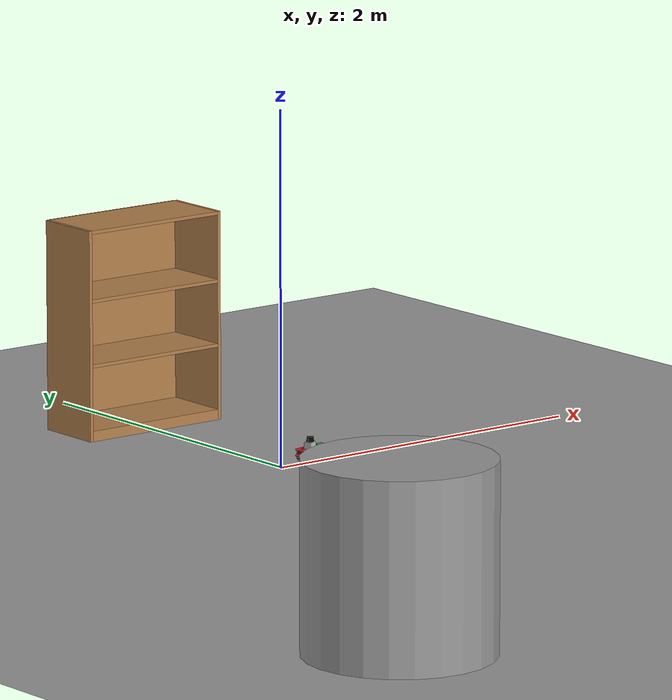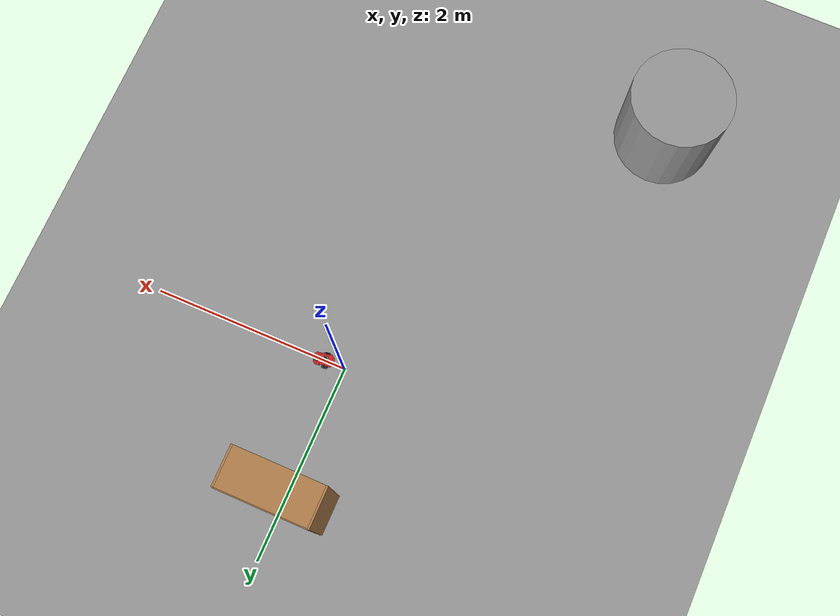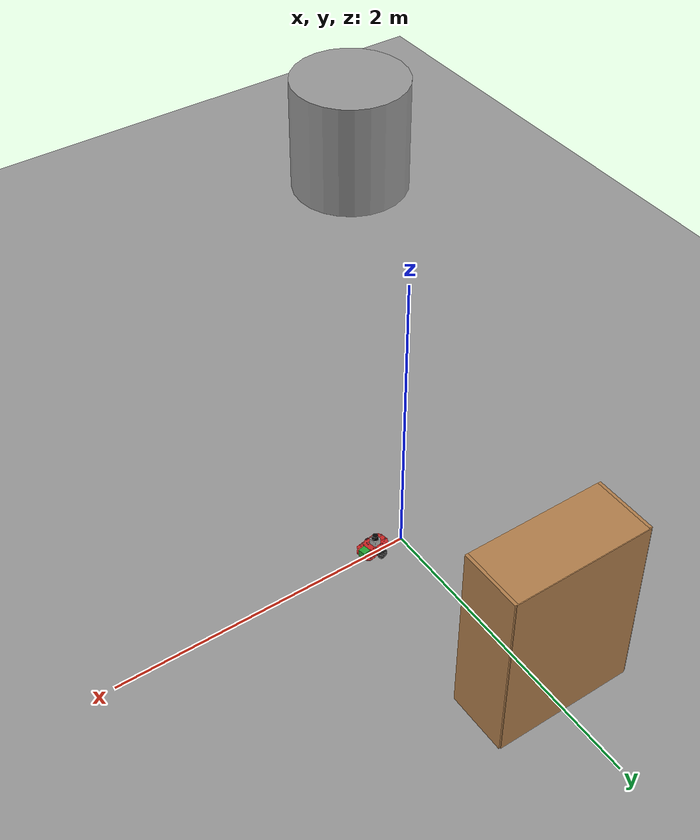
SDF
<sdf version="1.6">
 <world name="default">
  <light name="sun" type="directional">
   <pose>0 0 10 0 -0 0</pose>
   <diffuse>0.8 0.8 0.8 1</diffuse>
   <specular>0.2 0.2 0.2 1</specular>
   <attenuation>
    <range>1000</range>
    <constant>0.9</constant>
    <linear>0.01</linear>
    <quadratic>0.001</quadratic>
   </attenuation>
   <direction>0.5 0.1 -0.9</direction>
  </light>
  <scene><ambient>0.4 0.4 0.4 1</ambient><background>0.7 0.7 0.7 1</background><shadows>1</shadows></scene>
  <physics name="default_physics" default="0" type="ode">
   <max_step_size>0.01</max_step_size>
   <real_time_factor>1</real_time_factor>
   <real_time_update_rate>100</real_time_update_rate>
  </physics>
  <model name="bookshelf">
   <static>1</static>
   <link name="link">
    <inertial><mass>1</mass></inertial>
    <collision name="back">
     <pose>0 0.005 0.6 0 -0 0</pose>
     <geometry><box><size>0.9 0.01 1.2</size></box></geometry>
    </collision>
    <visual name="visual1">
     <pose>0 0.005 0.6 0 -0 0</pose>
     <geometry><box><size>0.9 0.01 1.2</size></box></geometry>
     <material>
      <script><uri>file://media/materials/scripts/gazebo.material</uri><name>Gazebo/Wood</name></script>
     </material>
    </visual>
    <collision name="left_side">
     <pose>0.45 -0.195 0.6 0 -0 0</pose>
     <geometry><box><size>0.02 0.4 1.2</size></box></geometry>
    </collision>
    <visual name="visual2">
     <pose>0.45 -0.195 0.6 0 -0 0</pose>
     <geometry><box><size>0.02 0.4 1.2</size></box></geometry>
     <material>
      <script><uri>file://media/materials/scripts/gazebo.material</uri><name>Gazebo/Wood</name></script>
     </material>
    </visual>
    <collision name="right_side">
     <pose>-0.45 -0.195 0.6 0 -0 0</pose>
     <geometry><box><size>0.02 0.4 1.2</size></box></geometry>
    </collision>
    <visual name="visual3">
     <pose>-0.45 -0.195 0.6 0 -0 0</pose>
     <geometry><box><size>0.02 0.4 1.2</size></box></geometry>
     <material>
      <script><uri>file://media/materials/scripts/gazebo.material</uri><name>Gazebo/Wood</name></script>
     </material>
    </visual>
    <collision name="bottom">
     <pose>0 -0.195 0.03 0 -0 0</pose>
     <geometry><box><size>0.88 0.4 0.06</size></box></geometry>
    </collision>
    <visual name="visual4">
     <pose>0 -0.195 0.03 0 -0 0</pose>
     <geometry><box><size>0.88 0.4 0.06</size></box></geometry>
     <material>
      <script><uri>file://media/materials/scripts/gazebo.material</uri><name>Gazebo/Wood</name></script>
     </material>
    </visual>
    <collision name="top">
     <pose>0 -0.195 1.19 0 -0 0</pose>
     <geometry><box><size>0.88 0.4 0.02</size></box></geometry>
    </collision>
    <visual name="visual5">
     <pose>0 -0.195 1.19 0 -0 0</pose>
     <geometry><box><size>0.88 0.4 0.02</size></box></geometry>
     <material>
      <script><uri>file://media/materials/scripts/gazebo.material</uri><name>Gazebo/Wood</name></script>
     </material>
    </visual>
    <collision name="low_shelf">
     <pose>0 -0.195 0.43 0 -0 0</pose>
     <geometry><box><size>0.88 0.4 0.02</size></box></geometry>
    </collision>
    <visual name="visual6">
     <pose>0 -0.195 0.43 0 -0 0</pose>
     <geometry><box><size>0.88 0.4 0.02</size></box></geometry>
     <material>
      <script><uri>file://media/materials/scripts/gazebo.material</uri><name>Gazebo/Wood</name></script>
     </material>
    </visual>
    <collision name="high_shelf">
     <pose>0 -0.195 0.8 0 -0 0</pose>
     <geometry><box><size>0.88 0.4 0.02</size></box></geometry>
    </collision>
    <visual name="visual7">
     <pose>0 -0.195 0.8 0 -0 0</pose>
     <geometry><box><size>0.88 0.4 0.02</size></box></geometry>
     <material>
      <script><uri>file://media/materials/scripts/gazebo.material</uri><name>Gazebo/Wood</name></script>
     </material>
    </visual>
    <velocity_decay><linear>0</linear><angular>0</angular></velocity_decay>
   </link>
   <pose>0 1.53026 0 0 -0 0</pose>
  </model>
  <model name="ground_plane_0">
   <static>1</static>
   <link name="link">
    <collision name="collision">
     <geometry><plane><normal>0 0 1</normal><size>100 100</size></plane></geometry>
     <surface><friction><ode><mu>100</mu><mu2>50</mu2></ode></friction></surface>
    </collision>
    <visual name="visual">
     <cast_shadows>0</cast_shadows>
     <geometry><plane><normal>0 0 1</normal><size>100 100</size></plane></geometry>
     <material>
      <script><uri>file://media/materials/scripts/gazebo.material</uri><name>Gazebo/Grey</name></script>
     </material>
    </visual>
    <velocity_decay><linear>0</linear><angular>0</angular></velocity_decay>
   </link>
   <pose>0.497681 0 0 0 -0 0</pose>
  </model>
  <model name="unit_cylinder_1">
   <pose>-2 -3.4888 0.49912 0 -0 0</pose>
   <link name="link">
    <inertial>
     <mass>1</mass>
     <inertia><ixx>1</ixx><ixy>0</ixy><ixz>0</ixz><iyy>1</iyy><iyz>0</iyz><izz>1</izz></inertia>
    </inertial>
    <collision name="collision">
     <geometry><cylinder><radius>0.5</radius><length>1</length></cylinder></geometry>
    </collision>
    <visual name="visual">
     <geometry><cylinder><radius>0.5</radius><length>1</length></cylinder></geometry>
     <material>
      <script><uri>file://media/materials/scripts/gazebo.material</uri><name>Gazebo/Grey</name></script>
     </material>
    </visual>
    <velocity_decay><linear>0</linear><angular>0</angular></velocity_decay>
   </link>
   <static>0</static>
  </model>
  <gravity>0 0 -9.8</gravity>
  <magnetic_field>6e-06 2.3e-05 -4.2e-05</magnetic_field>
  <atmosphere type="adiabatic"/>
  <spherical_coordinates>
   <surface_model>EARTH_WGS84</surface_model>
   <latitude_deg>0</latitude_deg>
   <longitude_deg>0</longitude_deg>
   <elevation>0</elevation>
   <heading_deg>0</heading_deg>
  </spherical_coordinates>
  <model name="my_robot">
   <link name="base_footprint">
    <inertial>
     <pose>0.044619 0 0.040623 0 -0 0</pose>
     <mass>0.29001</mass>
     <inertia>
      <ixx>0.000300944</ixx>
      <ixy>0</ixy>
      <ixz>-0.000122316</ixz>
      <iyy>0.00123315</iyy>
      <iyz>0</iyz>
      <izz>0.00119445</izz>
     </inertia>
    </inertial>
    <collision name="base_footprint_fixed_joint_lump__chassis_collision">
     <pose>0 0 0.032 0 -0 0</pose>
     <geometry>
      <mesh>
       <scale>1 1 1</scale>
       <uri>/home/emiliano/catkin_ws/src/my_ROS_mobile_robot/my_robot_description/meshes/chassis.dae</uri>
      </mesh>
     </geometry>
     <surface><friction><ode><mu>0.3</mu><mu2>0.3</mu2></ode></friction></surface>
    </collision>
    <collision name="base_footprint_fixed_joint_lump__camera_collision_1">
     <pose>0.095 0 0.064 0 -0 0</pose>
     <geometry><box><size>0.05 0.05 0.05</size></box></geometry>
    </collision>
    <collision name="base_footprint_fixed_joint_lump__caster_wheel_collision_2">
     <pose>0.091 0 0.042 0 -0 0</pose>
     <geometry>
      <mesh>
       <scale>1 1 1</scale>
       <uri>/home/emiliano/catkin_ws/src/my_ROS_mobile_robot/my_robot_description/meshes/caster_wheel.dae</uri>
      </mesh>
     </geometry>
     <surface>
      <contact><ode><kp>1e+06</kp><kd>100</kd><max_vel>1</max_vel><min_depth>0.001</min_depth></ode></contact>
      <friction><ode><mu>0</mu><mu2>0</mu2></ode></friction>
     </surface>
    </collision>
    <collision name="base_footprint_fixed_joint_lump__hokuyo_collision_3">
     <pose>0 0 0.1125 0 -0 0</pose>
     <geometry><box><size>0.05 0.05 0.07</size></box></geometry>
    </collision>
    <visual name="base_footprint_fixed_joint_lump__chassis_visual">
     <pose>0 0 0.032 0 -0 0</pose>
     <geometry>
      <mesh>
       <scale>1 1 1</scale>
       <uri>/home/emiliano/catkin_ws/src/my_ROS_mobile_robot/my_robot_description/meshes/chassis.dae</uri>
      </mesh>
     </geometry>
     <material>
      <script><name>Gazebo/Red</name><uri>file://media/materials/scripts/gazebo.material</uri></script>
     </material>
    </visual>
    <visual name="base_footprint_fixed_joint_lump__camera_visual_1">
     <pose>0.095 0 0.064 0 -0 0</pose>
     <geometry><box><size>0.05 0.05 0.05</size></box></geometry>
     <material>
      <script><name>Gazebo/Green</name><uri>file://media/materials/scripts/gazebo.material</uri></script>
     </material>
    </visual>
    <visual name="base_footprint_fixed_joint_lump__caster_wheel_visual_2">
     <pose>0.091 0 0.042 0 -0 0</pose>
     <geometry>
      <mesh>
       <scale>1 1 1</scale>
       <uri>/home/emiliano/catkin_ws/src/my_ROS_mobile_robot/my_robot_description/meshes/caster_wheel.dae</uri>
      </mesh>
     </geometry>
     <material>
      <script><name>Gazebo/Chrome</name><uri>file://media/materials/scripts/gazebo.material</uri></script>
     </material>
    </visual>
    <visual name="base_footprint_fixed_joint_lump__hokuyo_visual_3">
     <pose>0 0 0.1125 0 -0 0</pose>
     <geometry>
      <mesh>
       <scale>1 1 1</scale>
       <uri>/home/emiliano/catkin_ws/src/my_ROS_mobile_robot/my_robot_description/meshes/hokuyo.dae</uri>
      </mesh>
     </geometry>
     <material><script><uri>__default__</uri><name>__default__</name></script></material>
    </visual>
    <sensor name="camera1" type="camera">
     <update_rate>30</update_rate>
     <camera name="head">
      <horizontal_fov>1.39626</horizontal_fov>
      <image><width>800</width><height>800</height><format>R8G8B8</format></image>
      <clip><near>0.02</near><far>300</far></clip>
     </camera>
     <plugin name="camera_controller" filename="libgazebo_ros_camera.so">
      <alwaysOn>true</alwaysOn>
      <updateRate>0.0</updateRate>
      <cameraName>my_robot/camera1</cameraName>
      <imageTopicName>image_raw</imageTopicName>
      <cameraInfoTopicName>camera_info</cameraInfoTopicName>
      <frameName>camera</frameName>
      <hackBaseline>0.07</hackBaseline>
      <distortionK1>0.0</distortionK1>
      <distortionK2>0.0</distortionK2>
      <distortionK3>0.0</distortionK3>
      <distortionT1>0.0</distortionT1>
      <distortionT2>0.0</distortionT2>
      <robotNamespace>/</robotNamespace>
     </plugin>
     <pose>0.095 0 0.064 0 -0 0</pose>
    </sensor>
    <sensor name="head_hokuyo_sensor" type="gpu_ray">
     <visualize>0</visualize>
     <update_rate>40</update_rate>
     <ray>
      <scan>
       <horizontal>
        <samples>720</samples>
        <resolution>1</resolution>
        <min_angle>-1.5708</min_angle>
        <max_angle>1.5708</max_angle>
       </horizontal>
      </scan>
      <range><min>0.1</min><max>30</max><resolution>0.01</resolution></range>
      <noise><type>gaussian</type><mean>0</mean><stddev>0.01</stddev></noise>
     </ray>
     <plugin name="gazebo_ros_head_hokuyo_controller" filename="libgazebo_ros_gpu_laser.so">
      <topicName>/my_robot/laser/scan</topicName>
      <frameName>hokuyo</frameName>
      <robotNamespace>/</robotNamespace>
     </plugin>
     <pose>0 0 0.1125 0 -0 0</pose>
    </sensor>
   </link>
   <link name="left_wheel">
    <pose>0 0.063 0.032 0 -0 0</pose>
    <inertial>
     <pose>0 0 0 1.5708 -0 0</pose>
     <mass>0.05</mass>
     <inertia>
      <ixx>1.56167e-05</ixx>
      <ixy>0</ixy>
      <ixz>0</ixz>
      <iyy>1.56167e-05</iyy>
      <iyz>0</iyz>
      <izz>2.56e-05</izz>
     </inertia>
    </inertial>
    <collision name="left_wheel_collision">
     <pose>0 0 0 1.5708 -0 0</pose>
     <geometry><cylinder><length>0.026</length><radius>0.032</radius></cylinder></geometry>
     <surface>
      <contact><ode><kp>1e+07</kp><kd>100</kd><max_vel>1</max_vel><min_depth>0.001</min_depth></ode></contact>
      <friction><ode><mu>1</mu><mu2>1</mu2></ode></friction>
     </surface>
    </collision>
    <visual name="left_wheel_visual">
     <pose>0 0 0 1.5708 -0 0</pose>
     <geometry>
      <mesh>
       <scale>1 1 1</scale>
       <uri>/home/emiliano/catkin_ws/src/my_ROS_mobile_robot/my_robot_description/meshes/left_wheel.dae</uri>
      </mesh>
     </geometry>
     <material>
      <script><name>Gazebo/FlatBlack</name><uri>file://media/materials/scripts/gazebo.material</uri></script>
     </material>
    </visual>
   </link>
   <joint name="left_wheel_hinge" type="revolute">
    <child>left_wheel</child>
    <parent>base_footprint</parent>
    <axis>
     <xyz>0 1 0</xyz>
     <limit><lower>-1e+16</lower><upper>1e+16</upper></limit>
     <dynamics><spring_reference>0</spring_reference><spring_stiffness>0</spring_stiffness></dynamics>
     <use_parent_model_frame>1</use_parent_model_frame>
    </axis>
   </joint>
   <link name="right_wheel">
    <pose>0 -0.063 0.032 0 -0 0</pose>
    <inertial>
     <pose>0 0 0 -1.5708 0 0</pose>
     <mass>0.05</mass>
     <inertia>
      <ixx>1.56167e-05</ixx>
      <ixy>0</ixy>
      <ixz>0</ixz>
      <iyy>1.56167e-05</iyy>
      <iyz>0</iyz>
      <izz>2.56e-05</izz>
     </inertia>
    </inertial>
    <collision name="right_wheel_collision">
     <pose>0 0 0 -1.5708 0 0</pose>
     <geometry><cylinder><length>0.026</length><radius>0.032</radius></cylinder></geometry>
     <surface>
      <contact><ode><kp>1e+07</kp><kd>100</kd><max_vel>1</max_vel><min_depth>0.001</min_depth></ode></contact>
      <friction><ode><mu>1</mu><mu2>1</mu2></ode></friction>
     </surface>
    </collision>
    <visual name="right_wheel_visual">
     <pose>0 0 0 -1.5708 0 0</pose>
     <geometry>
      <mesh>
       <scale>1 1 1</scale>
       <uri>/home/emiliano/catkin_ws/src/my_ROS_mobile_robot/my_robot_description/meshes/right_wheel.dae</uri>
      </mesh>
     </geometry>
     <material>
      <script><name>Gazebo/FlatBlack</name><uri>file://media/materials/scripts/gazebo.material</uri></script>
     </material>
    </visual>
   </link>
   <joint name="right_wheel_hinge" type="revolute">
    <child>right_wheel</child>
    <parent>base_footprint</parent>
    <axis>
     <xyz>0 1 0</xyz>
     <limit><lower>-1e+16</lower><upper>1e+16</upper></limit>
     <dynamics><spring_reference>0</spring_reference><spring_stiffness>0</spring_stiffness></dynamics>
     <use_parent_model_frame>1</use_parent_model_frame>
    </axis>
   </joint>
   <plugin name="gazebo_ros_control" filename="libgazebo_ros_control.so">
    <robotNamespace>/my_robot</robotNamespace>
    <robotParam>/robot_description</robotParam>
    <robotSimType>gazebo_ros_control/DefaultRobotHWSim</robotSimType>
   </plugin>
   <plugin name="ground_truth" filename="libgazebo_ros_p3d.so">
    <frameName>map</frameName>
    <topicName>my_robot/odom</topicName>
    <updateRate>30.0</updateRate>
    <robotNamespace>/</robotNamespace>
    <bodyName>base_footprint</bodyName>
    <xyzOffset>0 0 0</xyzOffset>
    <rpyOffset>0 -0 0</rpyOffset>
   </plugin>
   <static>0</static>
   <plugin name="differential_drive_controller" filename="libgazebo_ros_diff_drive.so">
    <robotNamespace>/</robotNamespace>
    <alwaysOn>true</alwaysOn>
    <updateRate>100</updateRate>
    <leftJoint>left_wheel_hinge</leftJoint>
    <rightJoint>right_wheel_hinge</rightJoint>
    <wheelSeparation>0.045</wheelSeparation>
    <wheelDiameter>0.064</wheelDiameter>
    <torque>20</torque>
    <commandTopic>my_robot/cmd_vel</commandTopic>
    <odometryTopic>my_robot/odom</odometryTopic>
    <odometryFrame>odom</odometryFrame>
    <robotBaseFrame>base_footprint</robotBaseFrame>
    <legacyMode>false</legacyMode>
    <rosDebugLevel>Debug</rosDebugLevel>
    <publishWheelTF>true</publishWheelTF>
    <publishWheelJointState>true</publishWheelJointState>
    <wheelAcceleration>5</wheelAcceleration>
    <wheelTorque>20</wheelTorque>
    <publishTf>1</publishTf>
    <odometrySource>encoder</odometrySource>
   </plugin>
   <pose>0.198725 -0.005029 -8.9e-05 0.00022 -0.00522 0.190362</pose>
  </model>
 </world>
</sdf>
